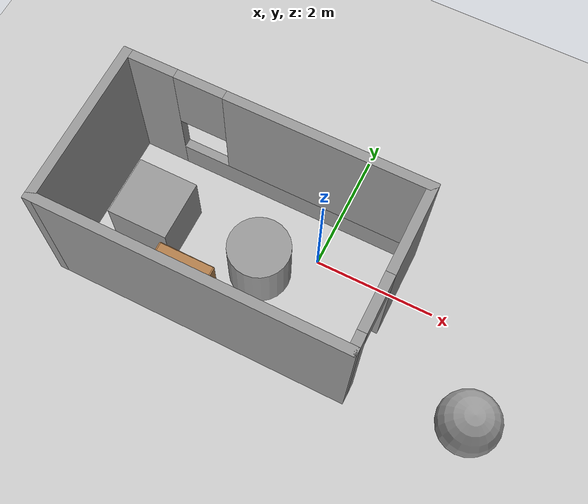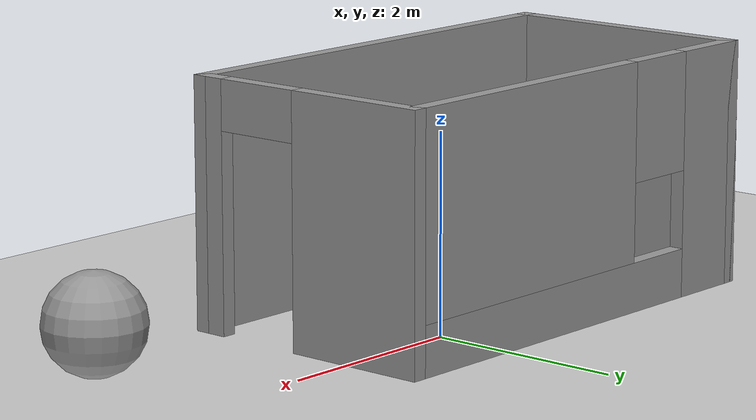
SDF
<sdf version="1.7">
 <world name="default">
  <model name="ground_plane">
   <static>1</static>
   <link name="link">
    <collision name="collision">
     <geometry><plane><normal>0 0 1</normal><size>100 100</size></plane></geometry>
     <surface><friction><ode><mu>100</mu><mu2>50</mu2></ode></friction></surface>
    </collision>
    <visual name="visual">
     <cast_shadows>0</cast_shadows>
     <geometry><plane><normal>0 0 1</normal><size>100 100</size></plane></geometry>
     <material>
      <script><uri>file://media/materials/scripts/gazebo.material</uri><name>Gazebo/Grey</name></script>
     </material>
    </visual>
   </link>
  </model>
  <light name="sun" type="directional">
   <pose>0 0 10 0 -0 0</pose>
   <diffuse>0.8 0.8 0.8 1</diffuse>
   <specular>0.2 0.2 0.2 1</specular>
   <attenuation>
    <range>1000</range>
    <constant>0.9</constant>
    <linear>0.01</linear>
    <quadratic>0.001</quadratic>
   </attenuation>
   <direction>-0.5 0.1 -0.9</direction>
   <spot><inner_angle>0</inner_angle><outer_angle>0</outer_angle><falloff>0</falloff></spot>
  </light>
  <scene><shadows>0</shadows><ambient>0.4 0.4 0.4 1</ambient><background>0.7 0.7 0.7 1</background></scene>
  <physics type="ode">
   <real_time_update_rate>1000</real_time_update_rate>
   <max_step_size>0.001</max_step_size>
   <real_time_factor>1</real_time_factor>
   <ode>
    <solver>
     <type>quick</type>
     <iters>150</iters>
     <precon_iters>0</precon_iters>
     <sor>1.4</sor>
     <use_dynamic_moi_rescaling>1</use_dynamic_moi_rescaling>
    </solver>
    <constraints>
     <cfm>1e-05</cfm>
     <erp>0.2</erp>
     <contact_max_correcting_vel>2000</contact_max_correcting_vel>
     <contact_surface_layer>0.01</contact_surface_layer>
    </constraints>
   </ode>
  </physics>
  <gravity>0 0 -9.8</gravity>
  <magnetic_field>6e-06 2.3e-05 -4.2e-05</magnetic_field>
  <atmosphere type="adiabatic"/>
  <audio><device>default</device></audio>
  <spherical_coordinates>
   <surface_model>EARTH_WGS84</surface_model>
   <latitude_deg>0</latitude_deg>
   <longitude_deg>0</longitude_deg>
   <elevation>0</elevation>
   <heading_deg>0</heading_deg>
  </spherical_coordinates>
  <model name="simpleRoom">
   <pose>-1.15195 -0.542349 0 0 -0 0</pose>
   <link name="Wall_10">
    <pose>2.425 0 0 0 -0 -1.5708</pose>
    <visual name="Wall_10_Visual_0">
     <pose>-0.627422 0 1.25 0 -0 0</pose>
     <geometry><box><size>1.49516 0.15 2.5</size></box></geometry>
     <material>
      <script><uri>file://media/materials/scripts/gazebo.material</uri><name>Gazebo/Grey</name></script>
      <ambient>1 1 1 1</ambient>
     </material>
     <meta><layer>0</layer></meta>
    </visual>
    <collision name="Wall_10_Collision_0">
     <geometry><box><size>1.49516 0.15 2.5</size></box></geometry>
     <pose>-0.627422 0 1.25 0 -0 0</pose>
    </collision>
    <visual name="Wall_10_Visual_1">
     <pose>1.19758 0 1.25 0 -0 0</pose>
     <geometry><box><size>0.354843 0.15 2.5</size></box></geometry>
     <material>
      <script><uri>file://media/materials/scripts/gazebo.material</uri><name>Gazebo/Grey</name></script>
      <ambient>1 1 1 1</ambient>
     </material>
     <meta><layer>0</layer></meta>
    </visual>
    <collision name="Wall_10_Collision_1">
     <geometry><box><size>0.354843 0.15 2.5</size></box></geometry>
     <pose>1.19758 0 1.25 0 -0 0</pose>
    </collision>
    <visual name="Wall_10_Visual_2">
     <pose>0.570157 0 2.25 0 -0 0</pose>
     <geometry><box><size>0.9 0.15 0.5</size></box></geometry>
     <material>
      <script><uri>file://media/materials/scripts/gazebo.material</uri><name>Gazebo/Grey</name></script>
      <ambient>1 1 1 1</ambient>
     </material>
     <meta><layer>0</layer></meta>
    </visual>
    <collision name="Wall_10_Collision_2">
     <geometry><box><size>0.9 0.15 0.5</size></box></geometry>
     <pose>0.570157 0 2.25 0 -0 0</pose>
    </collision>
   </link>
   <link name="Wall_11">
    <collision name="Wall_11_Collision">
     <geometry><box><size>5 0.15 2.5</size></box></geometry>
     <pose>0 0 1.25 0 -0 0</pose>
    </collision>
    <visual name="Wall_11_Visual">
     <pose>0 0 1.25 0 -0 0</pose>
     <geometry><box><size>5 0.15 2.5</size></box></geometry>
     <material>
      <script><uri>file://media/materials/scripts/gazebo.material</uri><name>Gazebo/Grey</name></script>
      <ambient>1 1 1 1</ambient>
     </material>
     <meta><layer>0</layer></meta>
    </visual>
    <pose>0 -1.3 0 0 -0 3.14159</pose>
   </link>
   <link name="Wall_8">
    <collision name="Wall_8_Collision">
     <geometry><box><size>2.75 0.15 2.5</size></box></geometry>
     <pose>0 0 1.25 0 -0 0</pose>
    </collision>
    <visual name="Wall_8_Visual">
     <pose>0 0 1.25 0 -0 0</pose>
     <geometry><box><size>2.75 0.15 2.5</size></box></geometry>
     <material>
      <script><uri>file://media/materials/scripts/gazebo.material</uri><name>Gazebo/Grey</name></script>
      <ambient>1 1 1 1</ambient>
     </material>
     <meta><layer>0</layer></meta>
    </visual>
    <pose>-2.425 0 0 0 -0 1.5708</pose>
   </link>
   <link name="Wall_9">
    <pose>0 1.3 0 0 -0 0</pose>
    <visual name="Wall_9_Visual_0">
     <pose>-2.05101 0 1.25 0 -0 0</pose>
     <geometry><box><size>0.89798 0.15 2.5</size></box></geometry>
     <material>
      <script><uri>file://media/materials/scripts/gazebo.material</uri><name>Gazebo/Grey</name></script>
      <ambient>1 1 1 1</ambient>
     </material>
     <meta><layer>0</layer></meta>
    </visual>
    <collision name="Wall_9_Collision_0">
     <geometry><box><size>0.89798 0.15 2.5</size></box></geometry>
     <pose>-2.05101 0 1.25 0 -0 0</pose>
    </collision>
    <visual name="Wall_9_Visual_1">
     <pose>0.44899 0 0.25 0 -0 0</pose>
     <geometry><box><size>4.10202 0.15 0.5</size></box></geometry>
     <material>
      <script><uri>file://media/materials/scripts/gazebo.material</uri><name>Gazebo/Grey</name></script>
      <ambient>1 1 1 1</ambient>
     </material>
     <meta><layer>0</layer></meta>
    </visual>
    <collision name="Wall_9_Collision_1">
     <geometry><box><size>4.10202 0.15 0.5</size></box></geometry>
     <pose>0.44899 0 0.25 0 -0 0</pose>
    </collision>
    <visual name="Wall_9_Visual_2">
     <pose>0.84899 0 1.5 0 -0 0</pose>
     <geometry><box><size>3.30202 0.15 2</size></box></geometry>
     <material>
      <script><uri>file://media/materials/scripts/gazebo.material</uri><name>Gazebo/Grey</name></script>
      <ambient>1 1 1 1</ambient>
     </material>
     <meta><layer>0</layer></meta>
    </visual>
    <collision name="Wall_9_Collision_2">
     <geometry><box><size>3.30202 0.15 2</size></box></geometry>
     <pose>0.84899 0 1.5 0 -0 0</pose>
    </collision>
    <visual name="Wall_9_Visual_3">
     <pose>-1.20202 0 1.9 0 -0 0</pose>
     <geometry><box><size>0.8 0.15 1.2</size></box></geometry>
     <material>
      <script><uri>file://media/materials/scripts/gazebo.material</uri><name>Gazebo/Grey</name></script>
      <ambient>1 1 1 1</ambient>
     </material>
     <meta><layer>0</layer></meta>
    </visual>
    <collision name="Wall_9_Collision_3">
     <geometry><box><size>0.8 0.15 1.2</size></box></geometry>
     <pose>-1.20202 0 1.9 0 -0 0</pose>
    </collision>
   </link>
   <static>1</static>
  </model>
  <model name="unit_cylinder">
   <pose>-0.754026 -0.557221 0.499993 4e-06 4e-06 -0</pose>
   <link name="link">
    <inertial>
     <mass>1</mass>
     <inertia><ixx>0.145833</ixx><ixy>0</ixy><ixz>0</ixz><iyy>0.145833</iyy><iyz>0</iyz><izz>0.125</izz></inertia>
    </inertial>
    <collision name="collision">
     <geometry><cylinder><radius>0.5</radius><length>1</length></cylinder></geometry>
    </collision>
    <visual name="visual">
     <geometry><cylinder><radius>0.5</radius><length>1</length></cylinder></geometry>
     <material>
      <script><name>Gazebo/Grey</name><uri>file://media/materials/scripts/gazebo.material</uri></script>
     </material>
    </visual>
   </link>
  </model>
  <model name="unit_sphere">
   <pose>3.11696 -1.46204 0.5 0 -0 0</pose>
   <link name="link">
    <inertial>
     <mass>1</mass>
     <inertia><ixx>0.1</ixx><ixy>0</ixy><ixz>0</ixz><iyy>0.1</iyy><iyz>0</iyz><izz>0.1</izz></inertia>
    </inertial>
    <collision name="collision"><geometry><sphere><radius>0.5</radius></sphere></geometry></collision>
    <visual name="visual">
     <geometry><sphere><radius>0.5</radius></sphere></geometry>
     <material>
      <script><name>Gazebo/Grey</name><uri>file://media/materials/scripts/gazebo.material</uri></script>
     </material>
    </visual>
   </link>
  </model>
  <model name="unit_box">
   <pose>-2.59161 -0.564378 0.5 0 -0 0</pose>
   <link name="link">
    <inertial>
     <mass>1</mass>
     <inertia>
      <ixx>0.166667</ixx>
      <ixy>0</ixy>
      <ixz>0</ixz>
      <iyy>0.166667</iyy>
      <iyz>0</iyz>
      <izz>0.166667</izz>
     </inertia>
    </inertial>
    <collision name="collision"><geometry><box><size>1 1 1</size></box></geometry></collision>
    <visual name="visual">
     <geometry><box><size>1 1 1</size></box></geometry>
     <material>
      <script><name>Gazebo/Grey</name><uri>file://media/materials/scripts/gazebo.material</uri></script>
     </material>
    </visual>
   </link>
  </model>
  <model name="bookshelf">
   <static>1</static>
   <link name="link">
    <inertial><mass>1</mass></inertial>
    <collision name="back">
     <pose>0 0.005 0.6 0 -0 0</pose>
     <geometry><box><size>0.9 0.01 1.2</size></box></geometry>
    </collision>
    <visual name="visual1">
     <pose>0 0.005 0.6 0 -0 0</pose>
     <geometry><box><size>0.9 0.01 1.2</size></box></geometry>
     <material>
      <script><uri>file://media/materials/scripts/gazebo.material</uri><name>Gazebo/Wood</name></script>
     </material>
    </visual>
    <collision name="left_side">
     <pose>0.45 -0.195 0.6 0 -0 0</pose>
     <geometry><box><size>0.02 0.4 1.2</size></box></geometry>
    </collision>
    <visual name="visual2">
     <pose>0.45 -0.195 0.6 0 -0 0</pose>
     <geometry><box><size>0.02 0.4 1.2</size></box></geometry>
     <material>
      <script><uri>file://media/materials/scripts/gazebo.material</uri><name>Gazebo/Wood</name></script>
     </material>
    </visual>
    <collision name="right_side">
     <pose>-0.45 -0.195 0.6 0 -0 0</pose>
     <geometry><box><size>0.02 0.4 1.2</size></box></geometry>
    </collision>
    <visual name="visual3">
     <pose>-0.45 -0.195 0.6 0 -0 0</pose>
     <geometry><box><size>0.02 0.4 1.2</size></box></geometry>
     <material>
      <script><uri>file://media/materials/scripts/gazebo.material</uri><name>Gazebo/Wood</name></script>
     </material>
    </visual>
    <collision name="bottom">
     <pose>0 -0.195 0.03 0 -0 0</pose>
     <geometry><box><size>0.88 0.4 0.06</size></box></geometry>
    </collision>
    <visual name="visual4">
     <pose>0 -0.195 0.03 0 -0 0</pose>
     <geometry><box><size>0.88 0.4 0.06</size></box></geometry>
     <material>
      <script><uri>file://media/materials/scripts/gazebo.material</uri><name>Gazebo/Wood</name></script>
     </material>
    </visual>
    <collision name="top">
     <pose>0 -0.195 1.19 0 -0 0</pose>
     <geometry><box><size>0.88 0.4 0.02</size></box></geometry>
    </collision>
    <visual name="visual5">
     <pose>0 -0.195 1.19 0 -0 0</pose>
     <geometry><box><size>0.88 0.4 0.02</size></box></geometry>
     <material>
      <script><uri>file://media/materials/scripts/gazebo.material</uri><name>Gazebo/Wood</name></script>
     </material>
    </visual>
    <collision name="low_shelf">
     <pose>0 -0.195 0.43 0 -0 0</pose>
     <geometry><box><size>0.88 0.4 0.02</size></box></geometry>
    </collision>
    <visual name="visual6">
     <pose>0 -0.195 0.43 0 -0 0</pose>
     <geometry><box><size>0.88 0.4 0.02</size></box></geometry>
     <material>
      <script><uri>file://media/materials/scripts/gazebo.material</uri><name>Gazebo/Wood</name></script>
     </material>
    </visual>
    <collision name="high_shelf">
     <pose>0 -0.195 0.8 0 -0 0</pose>
     <geometry><box><size>0.88 0.4 0.02</size></box></geometry>
    </collision>
    <visual name="visual7">
     <pose>0 -0.195 0.8 0 -0 0</pose>
     <geometry><box><size>0.88 0.4 0.02</size></box></geometry>
     <material>
      <script><uri>file://media/materials/scripts/gazebo.material</uri><name>Gazebo/Wood</name></script>
     </material>
    </visual>
   </link>
   <pose>-1.60426 -1.22629 0 0 -0 0</pose>
  </model>
 </world>
</sdf>
